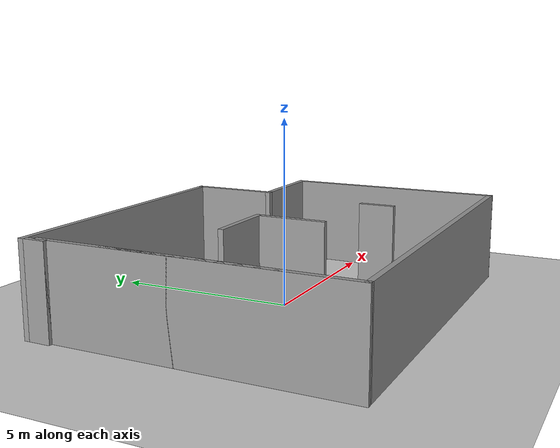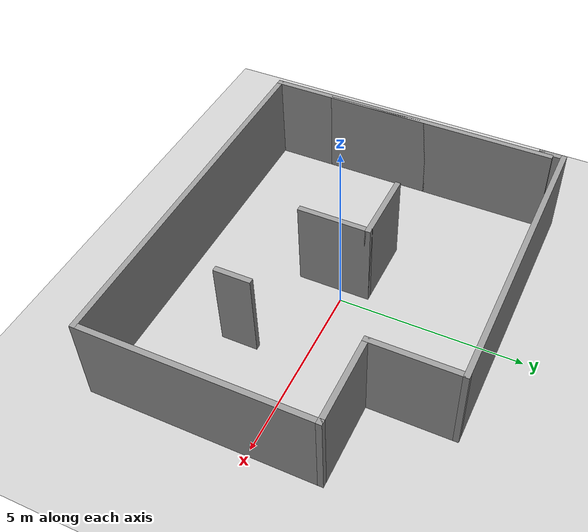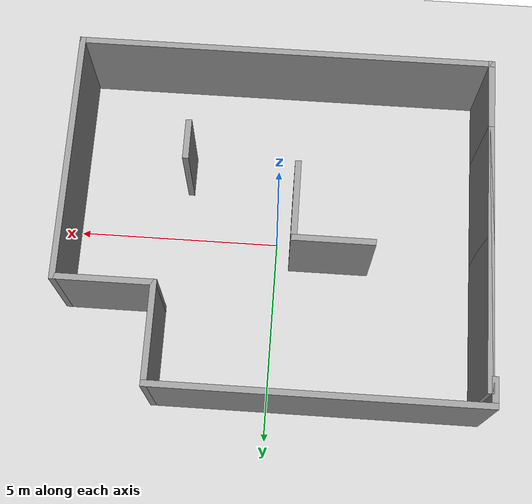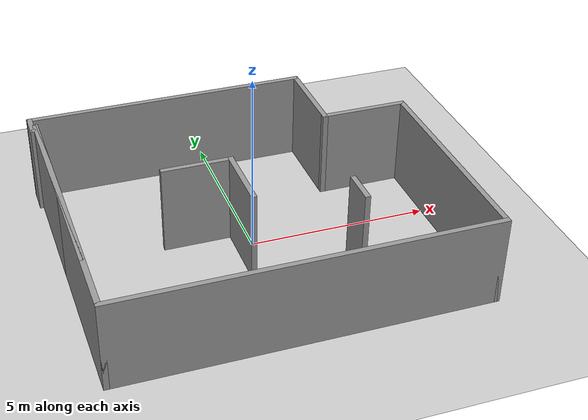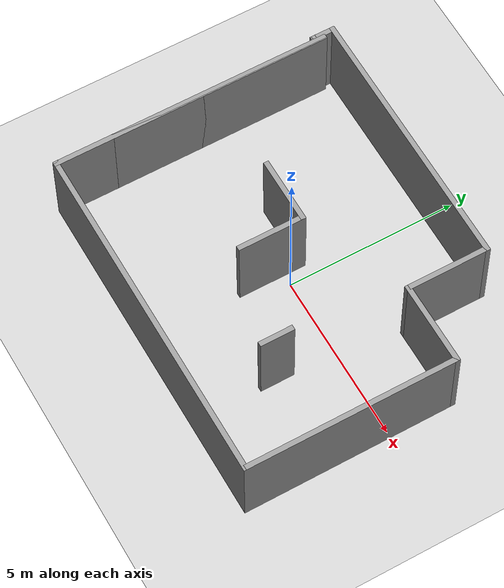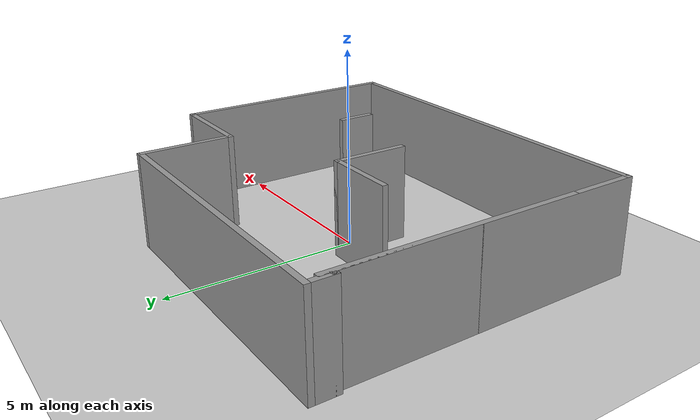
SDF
<?xml version="1.0" ?>
<sdf version="1.7">
  <world name="custom_world">
    <!-- A global light source -->
    <include>
      <uri>model://sun</uri>
    </include>

    <!-- A ground plane -->
    <include>
      <uri>model://ground_plane</uri>
    </include>

    <!-- Include the custom world model -->
    <include>
      <uri>model://custom_world</uri>
      <name>custom_world</name>
      <pose>0 0 0 0 0 0</pose>
    </include>

    <physics name="default_physics" default="0" type="ode">
      <max_step_size>0.001</max_step_size>
      <real_time_factor>1</real_time_factor>
      <real_time_update_rate>1000</real_time_update_rate>
    </physics>

    <scene>
      <ambient>0.4 0.4 0.4 1</ambient>
      <background>0.7 0.7 0.7 1</background>
      <shadows>true</shadows>
    </scene>
  </world>
</sdf>

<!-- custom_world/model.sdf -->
<sdf version='1.7'>
  <model name='custom_world'>
    <pose>-0.47 2.315 0 0 -0 0</pose>
    <link name='Wall_10'>
      <collision name='Wall_10_Collision'>
        <geometry>
          <box>
            <size>8 0.15 2.5</size>
          </box>
        </geometry>
        <pose>0 0 1.25 0 -0 0</pose>
      </collision>
      <visual name='Wall_10_Visual'>
        <pose>0 0 1.25 0 -0 0</pose>
        <geometry>
          <box>
            <size>8 0.15 2.5</size>
          </box>
        </geometry>
        <material>
          <script>
            <uri>file://media/materials/scripts/gazebo.material</uri>
            <name>Gazebo/Grey</name>
          </script>
          <ambient>1 1 1 1</ambient>
        </material>
        <meta>
          <layer>0</layer>
        </meta>
      </visual>
      <pose>-1.175 4.225 0 0 -0 3.14159</pose>
    </link>
    <link name='Wall_11'>
      <collision name='Wall_11_Collision'>
        <geometry>
          <box>
            <size>0.75 0.15 2.5</size>
          </box>
        </geometry>
        <pose>0 0 1.25 0 -0 0</pose>
      </collision>
      <visual name='Wall_11_Visual'>
        <pose>0 0 1.25 0 -0 0</pose>
        <geometry>
          <box>
            <size>0.75 0.15 2.5</size>
          </box>
        </geometry>
        <material>
          <script>
            <uri>file://media/materials/scripts/gazebo.material</uri>
            <name>Gazebo/Grey</name>
          </script>
          <ambient>1 1 1 1</ambient>
        </material>
        <meta>
          <layer>0</layer>
        </meta>
      </visual>
      <pose>-5.1 3.925 0 0 -0 -1.5708</pose>
    </link>
    <link name='Wall_12'>
      <collision name='Wall_12_Collision'>
        <geometry>
          <box>
            <size>0.15 0.15 2.5</size>
          </box>
        </geometry>
        <pose>0 0 1.25 0 -0 0</pose>
      </collision>
      <visual name='Wall_12_Visual'>
        <pose>0 0 1.25 0 -0 0</pose>
        <geometry>
          <box>
            <size>0.15 0.15 2.5</size>
          </box>
        </geometry>
        <material>
          <script>
            <uri>file://media/materials/scripts/gazebo.material</uri>
            <name>Gazebo/Grey</name>
          </script>
          <ambient>1 1 1 1</ambient>
        </material>
        <meta>
          <layer>0</layer>
        </meta>
      </visual>
      <pose>-5.1 3.625 0 0 -0 0</pose>
    </link>
    <link name='Wall_14'>
      <collision name='Wall_14_Collision'>
        <geometry>
          <box>
            <size>2 0.15 2.5</size>
          </box>
        </geometry>
        <pose>0 0 1.25 0 -0 0</pose>
      </collision>
      <visual name='Wall_14_Visual'>
        <pose>0 0 1.25 0 -0 0</pose>
        <geometry>
          <box>
            <size>2 0.15 2.5</size>
          </box>
        </geometry>
        <material>
          <script>
            <uri>file://media/materials/scripts/gazebo.material</uri>
            <name>Gazebo/Grey</name>
          </script>
          <ambient>1 1 1 1</ambient>
        </material>
        <meta>
          <layer>0</layer>
        </meta>
      </visual>
      <pose>-1.33106 0.57182 0 0 -0 0</pose>
    </link>
    <link name='Wall_15'>
      <collision name='Wall_15_Collision'>
        <geometry>
          <box>
            <size>2 0.15 2.5</size>
          </box>
        </geometry>
        <pose>0 0 1.25 0 -0 0</pose>
      </collision>
      <visual name='Wall_15_Visual'>
        <pose>0 0 1.25 0 -0 0</pose>
        <geometry>
          <box>
            <size>2 0.15 2.5</size>
          </box>
        </geometry>
        <material>
          <script>
            <uri>file://media/materials/scripts/gazebo.material</uri>
            <name>Gazebo/Grey</name>
          </script>
          <ambient>1 1 1 1</ambient>
        </material>
        <meta>
          <layer>0</layer>
        </meta>
      </visual>
      <pose>-0.406062 -0.35318 0 0 -0 -1.5708</pose>
    </link>
    <link name='Wall_17'>
      <collision name='Wall_17_Collision'>
        <geometry>
          <box>
            <size>1 0.15 2.5</size>
          </box>
        </geometry>
        <pose>0 0 1.25 0 -0 0</pose>
      </collision>
      <visual name='Wall_17_Visual'>
        <pose>0 0 1.25 0 -0 0</pose>
        <geometry>
          <box>
            <size>1 0.15 2.5</size>
          </box>
        </geometry>
        <material>
          <script>
            <uri>file://media/materials/scripts/gazebo.material</uri>
            <name>Gazebo/Grey</name>
          </script>
          <ambient>1 1 1 1</ambient>
        </material>
        <meta>
          <layer>0</layer>
        </meta>
      </visual>
      <pose>2.29257 -1.74179 0 0 -0 -1.5708</pose>
    </link>
    <link name='Wall_4'>
      <collision name='Wall_4_Collision'>
        <geometry>
          <box>
            <size>6.5 0.15 2.5</size>
          </box>
        </geometry>
        <pose>0 0 1.25 0 -0 0</pose>
      </collision>
      <visual name='Wall_4_Visual'>
        <pose>0 0 1.25 0 -0 0</pose>
        <geometry>
          <box>
            <size>6.5 0.15 2.5</size>
          </box>
        </geometry>
        <material>
          <script>
            <uri>file://media/materials/scripts/gazebo.material</uri>
            <name>Gazebo/Grey</name>
          </script>
          <ambient>1 1 1 1</ambient>
        </material>
        <meta>
          <layer>0</layer>
        </meta>
      </visual>
      <pose>-5 0.7 0 0 -0 1.5708</pose>
    </link>
    <link name='Wall_5'>
      <collision name='Wall_5_Collision'>
        <geometry>
          <box>
            <size>8.25 0.15 2.5</size>
          </box>
        </geometry>
        <pose>0 0 1.25 0 -0 0</pose>
      </collision>
      <visual name='Wall_5_Visual'>
        <pose>0 0 1.25 0 -0 0</pose>
        <geometry>
          <box>
            <size>8.25 0.15 2.5</size>
          </box>
        </geometry>
        <material>
          <script>
            <uri>file://media/materials/scripts/gazebo.material</uri>
            <name>Gazebo/Grey</name>
          </script>
          <ambient>1 1 1 1</ambient>
        </material>
        <meta>
          <layer>0</layer>
        </meta>
      </visual>
      <pose>-5 -0.175 0 0 -0 -1.5708</pose>
    </link>
    <link name='Wall_6'>
      <collision name='Wall_6_Collision'>
        <geometry>
          <box>
            <size>10.25 0.15 2.5</size>
          </box>
        </geometry>
        <pose>0 0 1.25 0 -0 0</pose>
      </collision>
      <visual name='Wall_6_Visual'>
        <pose>0 0 1.25 0 -0 0</pose>
        <geometry>
          <box>
            <size>10.25 0.15 2.5</size>
          </box>
        </geometry>
        <material>
          <script>
            <uri>file://media/materials/scripts/gazebo.material</uri>
            <name>Gazebo/Grey</name>
          </script>
          <ambient>1 1 1 1</ambient>
        </material>
        <meta>
          <layer>0</layer>
        </meta>
      </visual>
      <pose>0.05 -4.225 0 0 -0 0</pose>
    </link>
    <link name='Wall_7'>
      <collision name='Wall_7_Collision'>
        <geometry>
          <box>
            <size>6.25 0.15 2.5</size>
          </box>
        </geometry>
        <pose>0 0 1.25 0 -0 0</pose>
      </collision>
      <visual name='Wall_7_Visual'>
        <pose>0 0 1.25 0 -0 0</pose>
        <geometry>
          <box>
            <size>6.25 0.15 2.5</size>
          </box>
        </geometry>
        <material>
          <script>
            <uri>file://media/materials/scripts/gazebo.material</uri>
            <name>Gazebo/Grey</name>
          </script>
          <ambient>1 1 1 1</ambient>
        </material>
        <meta>
          <layer>0</layer>
        </meta>
      </visual>
      <pose>5.1 -1.175 0 0 -0 1.5708</pose>
    </link>
    <link name='Wall_8'>
      <collision name='Wall_8_Collision'>
        <geometry>
          <box>
            <size>2.5 0.15 2.5</size>
          </box>
        </geometry>
        <pose>0 0 1.25 0 -0 0</pose>
      </collision>
      <visual name='Wall_8_Visual'>
        <pose>0 0 1.25 0 -0 0</pose>
        <geometry>
          <box>
            <size>2.5 0.15 2.5</size>
          </box>
        </geometry>
        <material>
          <script>
            <uri>file://media/materials/scripts/gazebo.material</uri>
            <name>Gazebo/Grey</name>
          </script>
          <ambient>1 1 1 1</ambient>
        </material>
        <meta>
          <layer>0</layer>
        </meta>
      </visual>
      <pose>3.925 1.875 0 0 -0 3.14159</pose>
    </link>
    <link name='Wall_9'>
      <collision name='Wall_9_Collision'>
        <geometry>
          <box>
            <size>2.5 0.15 2.5</size>
          </box>
        </geometry>
        <pose>0 0 1.25 0 -0 0</pose>
      </collision>
      <visual name='Wall_9_Visual'>
        <pose>0 0 1.25 0 -0 0</pose>
        <geometry>
          <box>
            <size>2.5 0.15 2.5</size>
          </box>
        </geometry>
        <material>
          <script>
            <uri>file://media/materials/scripts/gazebo.material</uri>
            <name>Gazebo/Grey</name>
          </script>
          <ambient>1 1 1 1</ambient>
        </material>
        <meta>
          <layer>0</layer>
        </meta>
      </visual>
      <pose>2.75 3.05 0 0 -0 1.5708</pose>
    </link>
    <static>1</static>
  </model>
</sdf>
